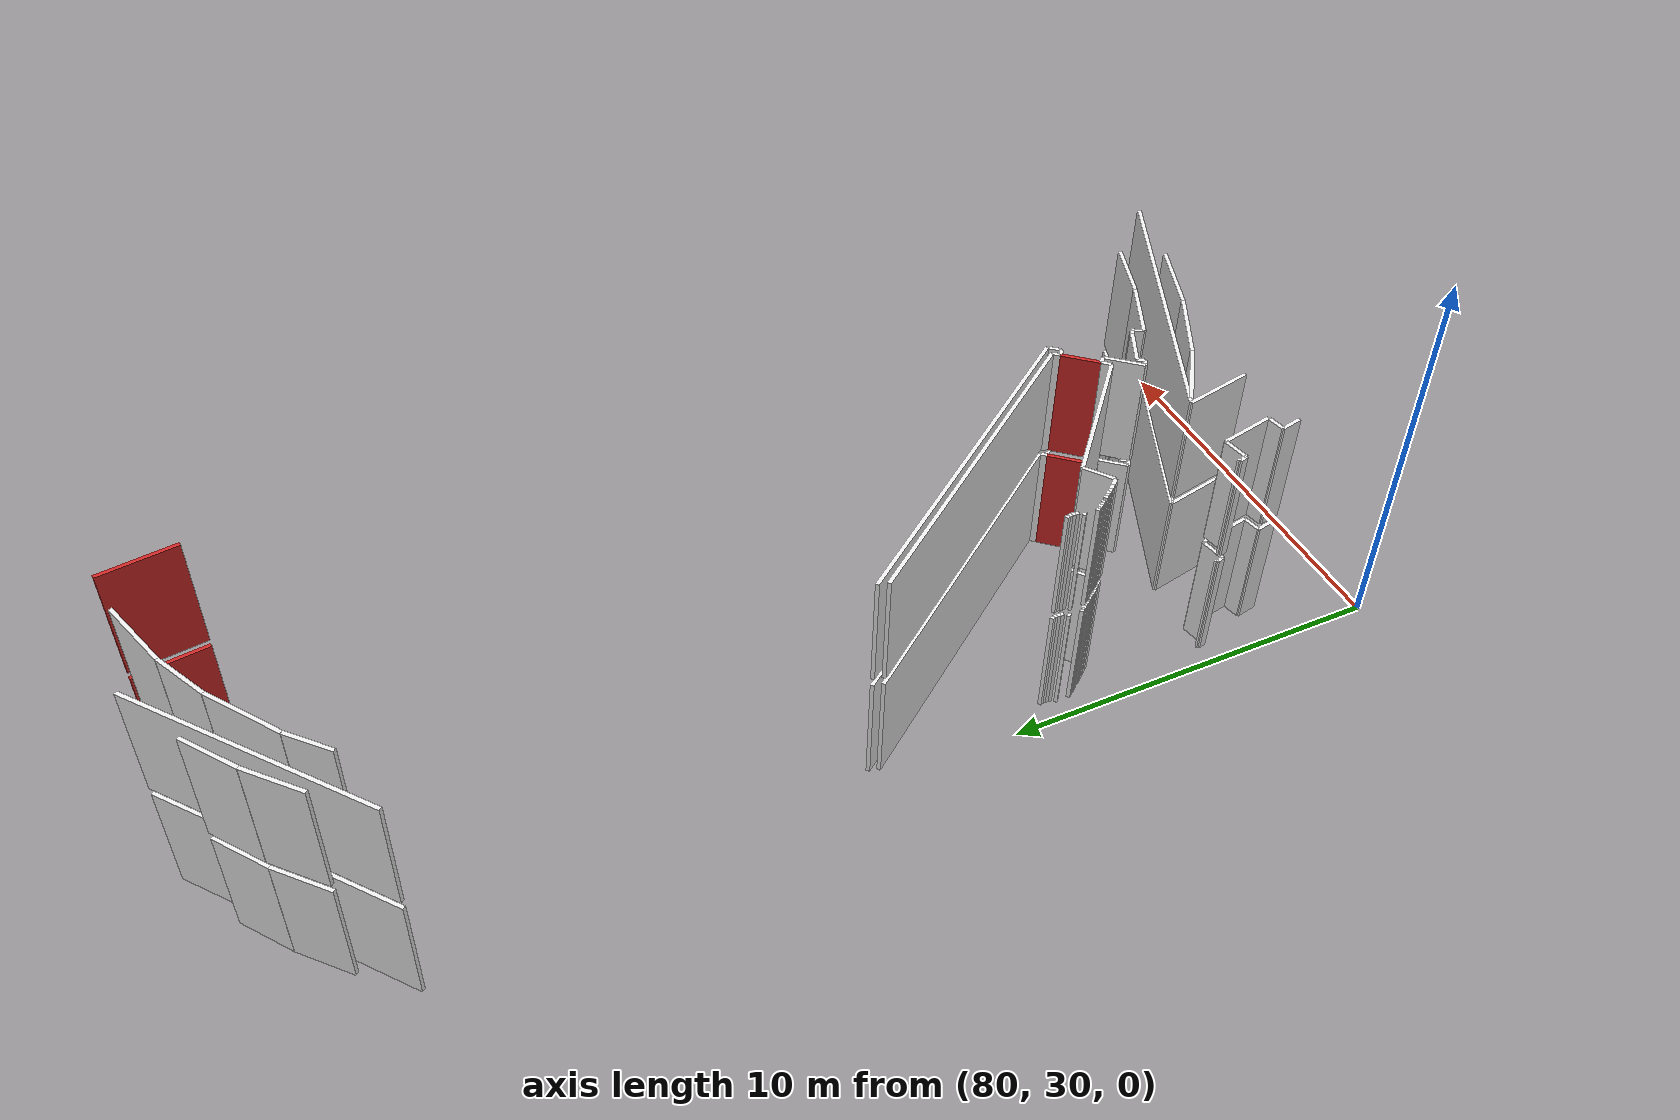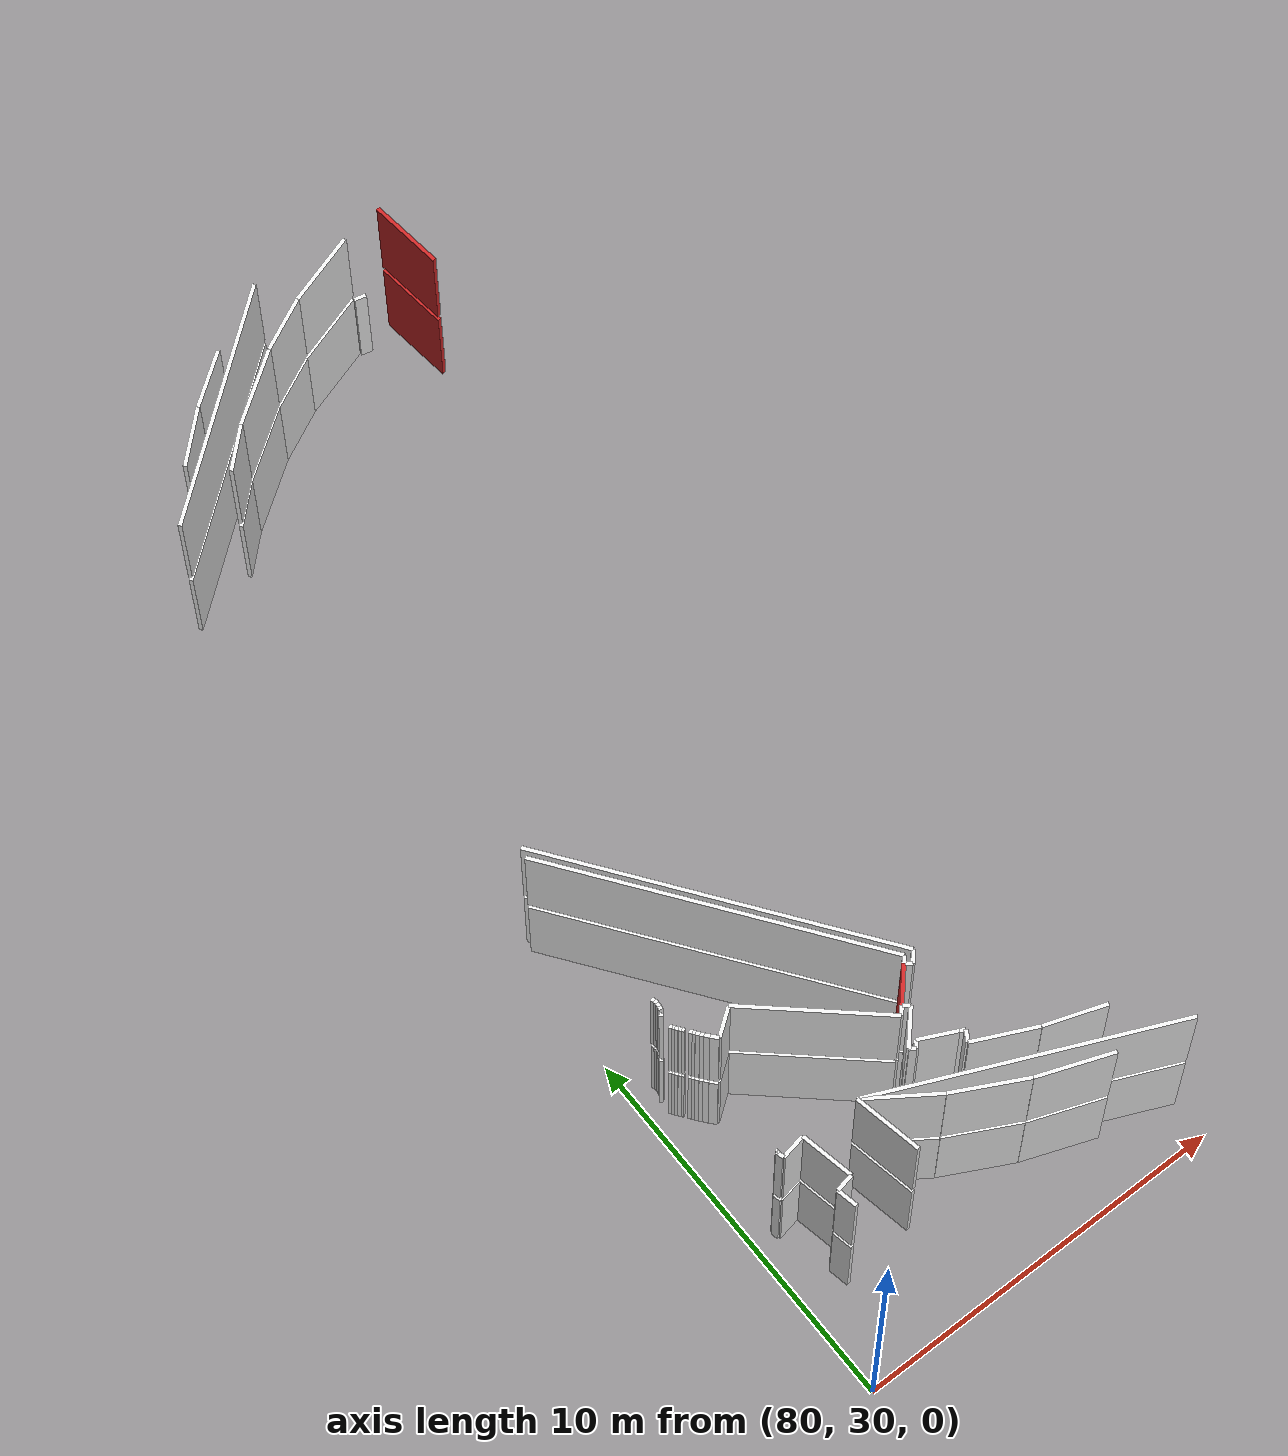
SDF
<sdf version="1.6">
 <world name="default">
  <model name="wall_85.3_35.8_0.0">
   <static>true</static>
   <pose>85.27999999999884 35.77000000001863 1.5 0 0 0.8424789459730314</pose>
   <link name="link">
    <visual name="visual">
     <geometry><box><size>0.9915644206490059 0.1 3</size></box></geometry>
     <material>
      <script><uri>file://media/materials/scripts/gazebo.material</uri><name>Gazebo/Red</name></script>
     </material>
    </visual>
   </link>
  </model>
  <model name="wall_87.9_57.8_0.0">
   <static>true</static>
   <pose>87.93499999999767 57.77499999990687 1.5 0 0 -1.4509545189031208</pose>
   <link name="link">
    <visual name="visual">
     <geometry><box><size>1.9237983263743257 0.1 3</size></box></geometry>
     <material>
      <script><uri>file://media/materials/scripts/gazebo.material</uri><name>Gazebo/Red</name></script>
     </material>
    </visual>
   </link>
  </model>
  <model name="wall_83.1_39.9_0.0">
   <static>true</static>
   <pose>83.10500000001048 39.88000000012107 1.5 0 0 -0.9358171018698879</pose>
   <link name="link">
    <visual name="visual">
     <geometry><box><size>8.918323833668834 0.1 3</size></box></geometry>
     <material>
      <script><uri>file://media/materials/scripts/gazebo.material</uri><name>Gazebo/White</name></script>
     </material>
    </visual>
   </link>
  </model>
  <model name="wall_85.7_36.2_0.0">
   <static>true</static>
   <pose>85.67999999999302 36.21500000008382 1.5 0 0 -2.3217253895523142</pose>
   <link name="link">
    <visual name="visual">
     <geometry><box><size>0.20518284522827895 0.1 3</size></box></geometry>
     <material>
      <script><uri>file://media/materials/scripts/gazebo.material</uri><name>Gazebo/White</name></script>
     </material>
    </visual>
   </link>
  </model>
  <model name="wall_84.9_35.3_0.0">
   <static>true</static>
   <pose>84.86500000001979 35.31000000005588 1.5 0 0 -2.3276308331322193</pose>
   <link name="link">
    <visual name="visual">
     <geometry><box><size>0.24758836783494145 0.1 3</size></box></geometry>
     <material>
      <script><uri>file://media/materials/scripts/gazebo.material</uri><name>Gazebo/White</name></script>
     </material>
    </visual>
   </link>
  </model>
  <model name="wall_83.3_36.5_0.0">
   <static>true</static>
   <pose>83.3300000000163 36.515000000130385 1.5 0 0 2.4126008939400343</pose>
   <link name="link">
    <visual name="visual">
     <geometry><box><size>3.8882000976497033 0.1 3</size></box></geometry>
     <material>
      <script><uri>file://media/materials/scripts/gazebo.material</uri><name>Gazebo/White</name></script>
     </material>
    </visual>
   </link>
  </model>
  <model name="wall_81.6_37.6_0.0">
   <static>true</static>
   <pose>81.55999999999767 37.574999999953434 1.5 0 0 -2.508166770423084</pose>
   <link name="link">
    <visual name="visual">
     <geometry><box><size>0.7940403013767493 0.1 3</size></box></geometry>
     <material>
      <script><uri>file://media/materials/scripts/gazebo.material</uri><name>Gazebo/White</name></script>
     </material>
    </visual>
   </link>
  </model>
  <model name="wall_81.2_37.4_0.0">
   <static>true</static>
   <pose>81.1699999999837 37.419999999925494 1.5 0 0 2.2896263260044316</pose>
   <link name="link">
    <visual name="visual">
     <geometry><box><size>0.21260291637603487 0.1 3</size></box></geometry>
     <material>
      <script><uri>file://media/materials/scripts/gazebo.material</uri><name>Gazebo/White</name></script>
     </material>
    </visual>
   </link>
  </model>
  <model name="wall_81.1_37.6_0.0">
   <static>true</static>
   <pose>81.05499999999302 37.55499999993481 1.5 0 0 2.2565258381046025</pose>
   <link name="link">
    <visual name="visual">
     <geometry><box><size>0.1421267039139652 0.1 3</size></box></geometry>
     <material>
      <script><uri>file://media/materials/scripts/gazebo.material</uri><name>Gazebo/White</name></script>
     </material>
    </visual>
   </link>
  </model>
  <model name="wall_81.0_37.6_0.0">
   <static>true</static>
   <pose>80.98000000001048 37.64500000001863 1.5 0 0 2.2794225967996993</pose>
   <link name="link">
    <visual name="visual">
     <geometry><box><size>0.09219544479768974 0.1 3</size></box></geometry>
     <material>
      <script><uri>file://media/materials/scripts/gazebo.material</uri><name>Gazebo/White</name></script>
     </material>
    </visual>
   </link>
  </model>
  <model name="wall_80.9_37.7_0.0">
   <static>true</static>
   <pose>80.9200000000128 37.71999999997206 1.5 0 0 2.2142974379164873</pose>
   <link name="link">
    <visual name="visual">
     <geometry><box><size>0.09999999968567863 0.1 3</size></box></geometry>
     <material>
      <script><uri>file://media/materials/scripts/gazebo.material</uri><name>Gazebo/White</name></script>
     </material>
    </visual>
   </link>
  </model>
  <model name="wall_80.9_37.8_0.0">
   <static>true</static>
   <pose>80.86999999999534 37.78999999980442 1.5 0 0 2.158798930342464</pose>
   <link name="link">
    <visual name="visual">
     <geometry><box><size>0.0721110255764384 0.1 3</size></box></geometry>
     <material>
      <script><uri>file://media/materials/scripts/gazebo.material</uri><name>Gazebo/White</name></script>
     </material>
    </visual>
   </link>
  </model>
  <model name="wall_80.8_37.9_0.0">
   <static>true</static>
   <pose>80.82499999998254 37.85499999998137 1.5 0 0 2.1910458106539252</pose>
   <link name="link">
    <visual name="visual">
     <geometry><box><size>0.08602325290617123 0.1 3</size></box></geometry>
     <material>
      <script><uri>file://media/materials/scripts/gazebo.material</uri><name>Gazebo/White</name></script>
     </material>
    </visual>
   </link>
  </model>
  <model name="wall_80.7_38.0_0.0">
   <static>true</static>
   <pose>80.72000000000116 37.98999999999069 1.5 0 0 2.158798929670837</pose>
   <link name="link">
    <visual name="visual">
     <geometry><box><size>0.07211102554415061 0.1 3</size></box></geometry>
     <material>
      <script><uri>file://media/materials/scripts/gazebo.material</uri><name>Gazebo/White</name></script>
     </material>
    </visual>
   </link>
  </model>
  <model name="wall_80.7_38.1_0.0">
   <static>true</static>
   <pose>80.67500000001746 38.050000000046566 1.5 0 0 2.2655346024190655</pose>
   <link name="link">
    <visual name="visual">
     <geometry><box><size>0.07810249679454152 0.1 3</size></box></geometry>
     <material>
      <script><uri>file://media/materials/scripts/gazebo.material</uri><name>Gazebo/White</name></script>
     </material>
    </visual>
   </link>
  </model>
  <model name="wall_80.6_38.1_0.0">
   <static>true</static>
   <pose>80.625 38.11499999999069 1.5 0 0 2.191045814350898</pose>
   <link name="link">
    <visual name="visual">
     <geometry><box><size>0.08602325256107957 0.1 3</size></box></geometry>
     <material>
      <script><uri>file://media/materials/scripts/gazebo.material</uri><name>Gazebo/White</name></script>
     </material>
    </visual>
   </link>
  </model>
  <model name="wall_80.6_38.2_0.0">
   <static>true</static>
   <pose>80.58499999999185 38.175000000046566 1.5 0 0 2.1112158241550976</pose>
   <link name="link">
    <visual name="visual">
     <geometry><box><size>0.058309519172461015 0.1 3</size></box></geometry>
     <material>
      <script><uri>file://media/materials/scripts/gazebo.material</uri><name>Gazebo/White</name></script>
     </material>
    </visual>
   </link>
  </model>
  <model name="wall_80.5_38.2_0.0">
   <static>true</static>
   <pose>80.5450000000128 38.22999999998137 1.5 0 0 2.265534606235961</pose>
   <link name="link">
    <visual name="visual">
     <geometry><box><size>0.07810249643681061 0.1 3</size></box></geometry>
     <material>
      <script><uri>file://media/materials/scripts/gazebo.material</uri><name>Gazebo/White</name></script>
     </material>
    </visual>
   </link>
  </model>
  <model name="wall_80.6_38.6_0.0">
   <static>true</static>
   <pose>80.55000000001746 38.579999999841675 1.5 0 0 0.7853981638825122</pose>
   <link name="link">
    <visual name="visual">
     <geometry><box><size>0.084852813780252 0.1 3</size></box></geometry>
     <material>
      <script><uri>file://media/materials/scripts/gazebo.material</uri><name>Gazebo/White</name></script>
     </material>
    </visual>
   </link>
  </model>
  <model name="wall_80.6_38.7_0.0">
   <static>true</static>
   <pose>80.63000000000466 38.71999999997206 1.5 0 0 1.3258176622984403</pose>
   <link name="link">
    <visual name="visual">
     <geometry><box><size>0.08246211213739423 0.1 3</size></box></geometry>
     <material>
      <script><uri>file://media/materials/scripts/gazebo.material</uri><name>Gazebo/White</name></script>
     </material>
    </visual>
   </link>
  </model>
  <model name="wall_80.6_38.8_0.0">
   <static>true</static>
   <pose>80.64500000001863 38.80499999993481 1.5 0 0 1.4601391059049407</pose>
   <link name="link">
    <visual name="visual">
     <geometry><box><size>0.0905538516971156 0.1 3</size></box></geometry>
     <material>
      <script><uri>file://media/materials/scripts/gazebo.material</uri><name>Gazebo/White</name></script>
     </material>
    </visual>
   </link>
  </model>
  <model name="wall_80.6_38.9_0.0">
   <static>true</static>
   <pose>80.64500000001863 38.890000000130385 1.5 0 0 1.695151321341658</pose>
   <link name="link">
    <visual name="visual">
     <geometry><box><size>0.08062257755807112 0.1 3</size></box></geometry>
     <material>
      <script><uri>file://media/materials/scripts/gazebo.material</uri><name>Gazebo/White</name></script>
     </material>
    </visual>
   </link>
  </model>
  <model name="wall_80.6_39.0_0.0">
   <static>true</static>
   <pose>80.625 38.96999999997206 1.5 0 0 1.9295669989791453</pose>
   <link name="link">
    <visual name="visual">
     <geometry><box><size>0.0854400370967353 0.1 3</size></box></geometry>
     <material>
      <script><uri>file://media/materials/scripts/gazebo.material</uri><name>Gazebo/White</name></script>
     </material>
    </visual>
   </link>
  </model>
  <model name="wall_81.4_55.8_0.0">
   <static>true</static>
   <pose>81.41499999997905 55.79000000003725 1.5 0 0 0.7444853337953005</pose>
   <link name="link">
    <visual name="visual">
     <geometry><box><size>1.2101652781804741 0.1 3</size></box></geometry>
     <material>
      <script><uri>file://media/materials/scripts/gazebo.material</uri><name>Gazebo/White</name></script>
     </material>
    </visual>
   </link>
  </model>
  <model name="wall_82.7_56.8_0.0">
   <static>true</static>
   <pose>82.7049999999872 56.78000000002794 1.5 0 0 0.6015335773054936</pose>
   <link name="link">
    <visual name="visual">
     <geometry><box><size>2.0498048685846277 0.1 3</size></box></geometry>
     <material>
      <script><uri>file://media/materials/scripts/gazebo.material</uri><name>Gazebo/White</name></script>
     </material>
    </visual>
   </link>
  </model>
  <model name="wall_84.2_57.7_0.0">
   <static>true</static>
   <pose>84.20999999999185 57.67999999993481 1.5 0 0 0.45145309163045305</pose>
   <link name="link">
    <visual name="visual">
     <geometry><box><size>1.4669696657345486 0.1 3</size></box></geometry>
     <material>
      <script><uri>file://media/materials/scripts/gazebo.material</uri><name>Gazebo/White</name></script>
     </material>
    </visual>
   </link>
  </model>
  <model name="wall_85.8_58.3_0.0">
   <static>true</static>
   <pose>85.79000000000815 58.29000000003725 1.5 0 0 0.30535858012147843</pose>
   <link name="link">
    <visual name="visual">
     <geometry><box><size>1.9292485584238948 0.1 3</size></box></geometry>
     <material>
      <script><uri>file://media/materials/scripts/gazebo.material</uri><name>Gazebo/White</name></script>
     </material>
    </visual>
   </link>
  </model>
  <model name="wall_86.9_58.5_0.0">
   <static>true</static>
   <pose>86.88999999998487 58.49499999987893 1.5 0 0 -0.22923193275564116</pose>
   <link name="link">
    <visual name="visual">
     <geometry><box><size>0.30805843596555793 0.1 3</size></box></geometry>
     <material>
      <script><uri>file://media/materials/scripts/gazebo.material</uri><name>Gazebo/White</name></script>
     </material>
    </visual>
   </link>
  </model>
  <model name="wall_87.9_32.8_0.0">
   <static>true</static>
   <pose>87.86499999999069 32.80499999993481 1.5 0 0 2.8081238857159727</pose>
   <link name="link">
    <visual name="visual">
     <geometry><box><size>1.6191973319729474 0.1 3</size></box></geometry>
     <material>
      <script><uri>file://media/materials/scripts/gazebo.material</uri><name>Gazebo/White</name></script>
     </material>
    </visual>
   </link>
  </model>
  <model name="wall_86.3_33.4_0.0">
   <static>true</static>
   <pose>86.3299999999872 33.43499999982305 1.5 0 0 2.6989393348950688</pose>
   <link name="link">
    <visual name="visual">
     <geometry><box><size>1.704259369904788 0.1 3</size></box></geometry>
     <material>
      <script><uri>file://media/materials/scripts/gazebo.material</uri><name>Gazebo/White</name></script>
     </material>
    </visual>
   </link>
  </model>
  <model name="wall_85.6_33.9_0.0">
   <static>true</static>
   <pose>85.63500000000931 33.92999999993481 1.5 0 0 1.0475180049988588</pose>
   <link name="link">
    <visual name="visual">
     <geometry><box><size>0.3001666206174493 0.1 3</size></box></geometry>
     <material>
      <script><uri>file://media/materials/scripts/gazebo.material</uri><name>Gazebo/White</name></script>
     </material>
    </visual>
   </link>
  </model>
  <model name="wall_85.6_34.1_0.0">
   <static>true</static>
   <pose>85.64500000001863 34.09499999997206 1.5 0 0 2.647651285684841</pose>
   <link name="link">
    <visual name="visual">
     <geometry><box><size>0.14764823052695686 0.1 3</size></box></geometry>
     <material>
      <script><uri>file://media/materials/scripts/gazebo.material</uri><name>Gazebo/White</name></script>
     </material>
    </visual>
   </link>
  </model>
  <model name="wall_85.1_34.3_0.0">
   <static>true</static>
   <pose>85.125 34.3499999998603 1.5 0 0 2.6912186013369697</pose>
   <link name="link">
    <visual name="visual">
     <geometry><box><size>1.0107917688674317 0.1 3</size></box></geometry>
     <material>
      <script><uri>file://media/materials/scripts/gazebo.material</uri><name>Gazebo/White</name></script>
     </material>
    </visual>
   </link>
  </model>
  <model name="wall_84.6_34.5_0.0">
   <static>true</static>
   <pose>84.61499999999069 34.484999999869615 1.5 0 0 -2.145101157111568</pose>
   <link name="link">
    <visual name="visual">
     <geometry><box><size>0.20248456724302388 0.1 3</size></box></geometry>
     <material>
      <script><uri>file://media/materials/scripts/gazebo.material</uri><name>Gazebo/White</name></script>
     </material>
    </visual>
   </link>
  </model>
  <model name="wall_84.5_34.4_0.0">
   <static>true</static>
   <pose>84.48499999998603 34.449999999953434 1.5 0 0 2.5535900496840247</pose>
   <link name="link">
    <visual name="visual">
     <geometry><box><size>0.18027756384423263 0.1 3</size></box></geometry>
     <material>
      <script><uri>file://media/materials/scripts/gazebo.material</uri><name>Gazebo/White</name></script>
     </material>
    </visual>
   </link>
  </model>
  <model name="wall_84.8_34.9_0.0">
   <static>true</static>
   <pose>84.75499999997555 34.88500000000931 1.5 0 0 0.8401379434576747</pose>
   <link name="link">
    <visual name="visual">
     <geometry><box><size>1.0339245620604522 0.1 3</size></box></geometry>
     <material>
      <script><uri>file://media/materials/scripts/gazebo.material</uri><name>Gazebo/White</name></script>
     </material>
    </visual>
   </link>
  </model>
  <model name="wall_85.0_35.3_0.0">
   <static>true</static>
   <pose>85.02499999999418 35.33499999996275 1.5 0 0 2.427501955287879</pose>
   <link name="link">
    <visual name="visual">
     <geometry><box><size>0.19849433231320573 0.1 3</size></box></geometry>
     <material>
      <script><uri>file://media/materials/scripts/gazebo.material</uri><name>Gazebo/White</name></script>
     </material>
    </visual>
   </link>
  </model>
  <model name="wall_85.7_36.1_0.0">
   <static>true</static>
   <pose>85.69000000000233 36.080000000074506 1.5 0 0 -0.6435011091425303</pose>
   <link name="link">
    <visual name="visual">
     <geometry><box><size>0.20000000009313226 0.1 3</size></box></geometry>
     <material>
      <script><uri>file://media/materials/scripts/gazebo.material</uri><name>Gazebo/White</name></script>
     </material>
    </visual>
   </link>
  </model>
  <model name="wall_85.9_36.1_0.0">
   <static>true</static>
   <pose>85.88500000000931 36.14999999990687 1.5 0 0 0.8465463256603086</pose>
   <link name="link">
    <visual name="visual">
     <geometry><box><size>0.34713109897444044 0.1 3</size></box></geometry>
     <material>
      <script><uri>file://media/materials/scripts/gazebo.material</uri><name>Gazebo/White</name></script>
     </material>
    </visual>
   </link>
  </model>
  <model name="wall_83.3_40.0_0.0">
   <static>true</static>
   <pose>83.26500000001397 40.0 1.5 0 0 2.2047677262171748</pose>
   <link name="link">
    <visual name="visual">
     <geometry><box><size>9.234419310697987 0.1 3</size></box></geometry>
     <material>
      <script><uri>file://media/materials/scripts/gazebo.material</uri><name>Gazebo/White</name></script>
     </material>
    </visual>
   </link>
  </model>
  <model name="wall_80.6_34.4_0.0">
   <static>true</static>
   <pose>80.60000000000582 34.44500000006519 1.5 0 0 -2.9764439722422162</pose>
   <link name="link">
    <visual name="visual">
     <geometry><box><size>0.060827625340493775 0.1 3</size></box></geometry>
     <material>
      <script><uri>file://media/materials/scripts/gazebo.material</uri><name>Gazebo/White</name></script>
     </material>
    </visual>
   </link>
  </model>
  <model name="wall_80.6_34.3_0.0">
   <static>true</static>
   <pose>80.59500000000116 34.34499999997206 1.5 0 0 -1.3134726118087283</pose>
   <link name="link">
    <visual name="visual">
     <geometry><box><size>0.1964688269868828 0.1 3</size></box></geometry>
     <material>
      <script><uri>file://media/materials/scripts/gazebo.material</uri><name>Gazebo/White</name></script>
     </material>
    </visual>
   </link>
  </model>
  <model name="wall_80.9_34.3_0.0">
   <static>true</static>
   <pose>80.94000000000233 34.31000000005588 1.5 0 0 0.18534795016043343</pose>
   <link name="link">
    <visual name="visual">
     <geometry><box><size>0.6511528238783146 0.1 3</size></box></geometry>
     <material>
      <script><uri>file://media/materials/scripts/gazebo.material</uri><name>Gazebo/White</name></script>
     </material>
    </visual>
   </link>
  </model>
  <model name="wall_81.4_33.7_0.0">
   <static>true</static>
   <pose>81.39999999999418 33.68000000016764 1.5 0 0 -1.3706152588342921</pose>
   <link name="link">
    <visual name="visual">
     <geometry><box><size>1.408119313011009 0.1 3</size></box></geometry>
     <material>
      <script><uri>file://media/materials/scripts/gazebo.material</uri><name>Gazebo/White</name></script>
     </material>
    </visual>
   </link>
  </model>
  <model name="wall_81.3_32.9_0.0">
   <static>true</static>
   <pose>81.30999999999767 32.94500000006519 1.5 0 0 -2.9483811690637367</pose>
   <link name="link">
    <visual name="visual">
     <geometry><box><size>0.4687216658345593 0.1 3</size></box></geometry>
     <material>
      <script><uri>file://media/materials/scripts/gazebo.material</uri><name>Gazebo/White</name></script>
     </material>
    </visual>
   </link>
  </model>
  <model name="wall_81.1_32.6_0.0">
   <static>true</static>
   <pose>81.13500000000931 32.63500000000931 1.5 0 0 -1.3661545169134668</pose>
   <link name="link">
    <visual name="visual">
     <geometry><box><size>0.5412947439055198 0.1 3</size></box></geometry>
     <material>
      <script><uri>file://media/materials/scripts/gazebo.material</uri><name>Gazebo/White</name></script>
     </material>
    </visual>
   </link>
  </model>
  <model name="wall_82.0_57.6_0.0">
   <static>true</static>
   <pose>81.96500000002561 57.63500000000931 1.5 0 0 -2.52285831789347</pose>
   <link name="link">
    <visual name="visual">
     <geometry><box><size>1.5344705928208873 0.1 3</size></box></geometry>
     <material>
      <script><uri>file://media/materials/scripts/gazebo.material</uri><name>Gazebo/White</name></script>
     </material>
    </visual>
   </link>
  </model>
  <model name="wall_80.8_56.7_0.0">
   <static>true</static>
   <pose>80.76500000001397 56.669999999925494 1.5 0 0 -2.4063806244587402</pose>
   <link name="link">
    <visual name="visual">
     <geometry><box><size>1.5505160431711233 0.1 3</size></box></geometry>
     <material>
      <script><uri>file://media/materials/scripts/gazebo.material</uri><name>Gazebo/White</name></script>
     </material>
    </visual>
   </link>
  </model>
  <model name="wall_82.9_33.4_0.0">
   <static>true</static>
   <pose>82.93499999999767 33.419999999925494 1.5 0 0 1.767098990916609</pose>
   <link name="link">
    <visual name="visual">
     <geometry><box><size>1.7944637079631676 0.1 3</size></box></geometry>
     <material>
      <script><uri>file://media/materials/scripts/gazebo.material</uri><name>Gazebo/White</name></script>
     </material>
    </visual>
   </link>
  </model>
  <model name="wall_83.6_33.7_0.0">
   <static>true</static>
   <pose>83.58499999999185 33.734999999869615 1.5 0 0 -0.6004846182035232</pose>
   <link name="link">
    <visual name="visual">
     <geometry><box><size>1.9998499942826147 0.1 3</size></box></geometry>
     <material>
      <script><uri>file://media/materials/scripts/gazebo.material</uri><name>Gazebo/White</name></script>
     </material>
    </visual>
   </link>
  </model>
  <model name="wall_85.3_32.7_0.0">
   <static>true</static>
   <pose>85.2949999999837 32.70999999996275 1.5 0 0 -0.47934138766953305</pose>
   <link name="link">
    <visual name="visual">
     <geometry><box><size>1.9948182874459637 0.1 3</size></box></geometry>
     <material>
      <script><uri>file://media/materials/scripts/gazebo.material</uri><name>Gazebo/White</name></script>
     </material>
    </visual>
   </link>
  </model>
  <model name="wall_87.1_31.9_0.0">
   <static>true</static>
   <pose>87.11499999999069 31.899999999906868 1.5 0 0 -0.3581845039546106</pose>
   <link name="link">
    <visual name="visual">
     <geometry><box><size>1.9967223142548778 0.1 3</size></box></geometry>
     <material>
      <script><uri>file://media/materials/scripts/gazebo.material</uri><name>Gazebo/White</name></script>
     </material>
    </visual>
   </link>
  </model>
  <model name="wall_86.4_32.7_0.0">
   <static>true</static>
   <pose>86.38000000000466 32.68999999994412 1.5 0 0 2.723112045214399</pose>
   <link name="link">
    <visual name="visual">
     <geometry><box><size>7.923761732800008 0.1 3</size></box></geometry>
     <material>
      <script><uri>file://media/materials/scripts/gazebo.material</uri><name>Gazebo/White</name></script>
     </material>
    </visual>
   </link>
  </model>
  <model name="wall_81.7_57.0_0.0">
   <static>true</static>
   <pose>81.74499999999534 56.97000000020489 1.5 0 0 0.6592795022457629</pose>
   <link name="link">
    <visual name="visual">
     <geometry><box><size>6.4648047147274434 0.1 3</size></box></geometry>
     <material>
      <script><uri>file://media/materials/scripts/gazebo.material</uri><name>Gazebo/White</name></script>
     </material>
    </visual>
   </link>
  </model>
  <model name="wall_85.3_35.8_3.2">
   <static>true</static>
   <pose>85.27999999999884 35.77000000001863 4.7 0 0 0.8424789459730314</pose>
   <link name="link">
    <visual name="visual">
     <geometry><box><size>0.9915644206490059 0.1 3</size></box></geometry>
     <material>
      <script><uri>file://media/materials/scripts/gazebo.material</uri><name>Gazebo/Red</name></script>
     </material>
    </visual>
   </link>
  </model>
  <model name="wall_87.9_57.8_3.2">
   <static>true</static>
   <pose>87.93499999999767 57.77499999990687 4.7 0 0 -1.4509545189031208</pose>
   <link name="link">
    <visual name="visual">
     <geometry><box><size>1.9237983263743257 0.1 3</size></box></geometry>
     <material>
      <script><uri>file://media/materials/scripts/gazebo.material</uri><name>Gazebo/Red</name></script>
     </material>
    </visual>
   </link>
  </model>
  <model name="wall_83.1_39.9_3.2">
   <static>true</static>
   <pose>83.10500000001048 39.88000000012107 4.7 0 0 -0.9358171018698879</pose>
   <link name="link">
    <visual name="visual">
     <geometry><box><size>8.918323833668834 0.1 3</size></box></geometry>
     <material>
      <script><uri>file://media/materials/scripts/gazebo.material</uri><name>Gazebo/White</name></script>
     </material>
    </visual>
   </link>
  </model>
  <model name="wall_85.7_36.2_3.2">
   <static>true</static>
   <pose>85.67999999999302 36.21500000008382 4.7 0 0 -2.3217253895523142</pose>
   <link name="link">
    <visual name="visual">
     <geometry><box><size>0.20518284522827895 0.1 3</size></box></geometry>
     <material>
      <script><uri>file://media/materials/scripts/gazebo.material</uri><name>Gazebo/White</name></script>
     </material>
    </visual>
   </link>
  </model>
  <model name="wall_84.9_35.3_3.2">
   <static>true</static>
   <pose>84.86500000001979 35.31000000005588 4.7 0 0 -2.3276308331322193</pose>
   <link name="link">
    <visual name="visual">
     <geometry><box><size>0.24758836783494145 0.1 3</size></box></geometry>
     <material>
      <script><uri>file://media/materials/scripts/gazebo.material</uri><name>Gazebo/White</name></script>
     </material>
    </visual>
   </link>
  </model>
  <model name="wall_83.3_36.5_3.2">
   <static>true</static>
   <pose>83.3300000000163 36.515000000130385 4.7 0 0 2.4126008939400343</pose>
   <link name="link">
    <visual name="visual">
     <geometry><box><size>3.8882000976497033 0.1 3</size></box></geometry>
     <material>
      <script><uri>file://media/materials/scripts/gazebo.material</uri><name>Gazebo/White</name></script>
     </material>
    </visual>
   </link>
  </model>
  <model name="wall_81.6_37.6_3.2">
   <static>true</static>
   <pose>81.55999999999767 37.574999999953434 4.7 0 0 -2.508166770423084</pose>
   <link name="link">
    <visual name="visual">
     <geometry><box><size>0.7940403013767493 0.1 3</size></box></geometry>
     <material>
      <script><uri>file://media/materials/scripts/gazebo.material</uri><name>Gazebo/White</name></script>
     </material>
    </visual>
   </link>
  </model>
  <model name="wall_81.2_37.4_3.2">
   <static>true</static>
   <pose>81.1699999999837 37.419999999925494 4.7 0 0 2.2896263260044316</pose>
   <link name="link">
    <visual name="visual">
     <geometry><box><size>0.21260291637603487 0.1 3</size></box></geometry>
     <material>
      <script><uri>file://media/materials/scripts/gazebo.material</uri><name>Gazebo/White</name></script>
     </material>
    </visual>
   </link>
  </model>
  <model name="wall_81.1_37.6_3.2">
   <static>true</static>
   <pose>81.05499999999302 37.55499999993481 4.7 0 0 2.2565258381046025</pose>
   <link name="link">
    <visual name="visual">
     <geometry><box><size>0.1421267039139652 0.1 3</size></box></geometry>
     <material>
      <script><uri>file://media/materials/scripts/gazebo.material</uri><name>Gazebo/White</name></script>
     </material>
    </visual>
   </link>
  </model>
  <model name="wall_81.0_37.6_3.2">
   <static>true</static>
   <pose>80.98000000001048 37.64500000001863 4.7 0 0 2.2794225967996993</pose>
   <link name="link">
    <visual name="visual">
     <geometry><box><size>0.09219544479768974 0.1 3</size></box></geometry>
     <material>
      <script><uri>file://media/materials/scripts/gazebo.material</uri><name>Gazebo/White</name></script>
     </material>
    </visual>
   </link>
  </model>
  <model name="wall_80.9_37.7_3.2">
   <static>true</static>
   <pose>80.9200000000128 37.71999999997206 4.7 0 0 2.2142974379164873</pose>
   <link name="link">
    <visual name="visual">
     <geometry><box><size>0.09999999968567863 0.1 3</size></box></geometry>
     <material>
      <script><uri>file://media/materials/scripts/gazebo.material</uri><name>Gazebo/White</name></script>
     </material>
    </visual>
   </link>
  </model>
  <model name="wall_80.9_37.8_3.2">
   <static>true</static>
   <pose>80.86999999999534 37.78999999980442 4.7 0 0 2.158798930342464</pose>
   <link name="link">
    <visual name="visual">
     <geometry><box><size>0.0721110255764384 0.1 3</size></box></geometry>
     <material>
      <script><uri>file://media/materials/scripts/gazebo.material</uri><name>Gazebo/White</name></script>
     </material>
    </visual>
   </link>
  </model>
  <model name="wall_80.8_37.9_3.2">
   <static>true</static>
   <pose>80.82499999998254 37.85499999998137 4.7 0 0 2.1910458106539252</pose>
   <link name="link">
    <visual name="visual">
     <geometry><box><size>0.08602325290617123 0.1 3</size></box></geometry>
     <material>
      <script><uri>file://media/materials/scripts/gazebo.material</uri><name>Gazebo/White</name></script>
     </material>
    </visual>
   </link>
  </model>
  <model name="wall_80.7_38.0_3.2">
   <static>true</static>
   <pose>80.72000000000116 37.98999999999069 4.7 0 0 2.158798929670837</pose>
   <link name="link">
    <visual name="visual">
     <geometry><box><size>0.07211102554415061 0.1 3</size></box></geometry>
     <material>
      <script><uri>file://media/materials/scripts/gazebo.material</uri><name>Gazebo/White</name></script>
     </material>
    </visual>
   </link>
  </model>
  <model name="wall_80.7_38.1_3.2">
   <static>true</static>
   <pose>80.67500000001746 38.050000000046566 4.7 0 0 2.2655346024190655</pose>
   <link name="link">
    <visual name="visual">
     <geometry><box><size>0.07810249679454152 0.1 3</size></box></geometry>
     <material>
      <script><uri>file://media/materials/scripts/gazebo.material</uri><name>Gazebo/White</name></script>
     </material>
    </visual>
   </link>
  </model>
  <model name="wall_80.6_38.1_3.2">
   <static>true</static>
   <pose>80.625 38.11499999999069 4.7 0 0 2.191045814350898</pose>
   <link name="link">
    <visual name="visual">
     <geometry><box><size>0.08602325256107957 0.1 3</size></box></geometry>
     <material>
      <script><uri>file://media/materials/scripts/gazebo.material</uri><name>Gazebo/White</name></script>
     </material>
    </visual>
   </link>
  </model>
  <model name="wall_80.6_38.2_3.2">
   <static>true</static>
   <pose>80.58499999999185 38.175000000046566 4.7 0 0 2.1112158241550976</pose>
   <link name="link">
    <visual name="visual">
     <geometry><box><size>0.058309519172461015 0.1 3</size></box></geometry>
     <material>
      <script><uri>file://media/materials/scripts/gazebo.material</uri><name>Gazebo/White</name></script>
     </material>
    </visual>
   </link>
  </model>
  <model name="wall_80.5_38.2_3.2">
   <static>true</static>
   <pose>80.5450000000128 38.22999999998137 4.7 0 0 2.265534606235961</pose>
   <link name="link">
    <visual name="visual">
     <geometry><box><size>0.07810249643681061 0.1 3</size></box></geometry>
     <material>
      <script><uri>file://media/materials/scripts/gazebo.material</uri><name>Gazebo/White</name></script>
     </material>
    </visual>
   </link>
  </model>
  <model name="wall_80.6_38.6_3.2">
   <static>true</static>
   <pose>80.55000000001746 38.579999999841675 4.7 0 0 0.7853981638825122</pose>
   <link name="link">
    <visual name="visual">
     <geometry><box><size>0.084852813780252 0.1 3</size></box></geometry>
     <material>
      <script><uri>file://media/materials/scripts/gazebo.material</uri><name>Gazebo/White</name></script>
     </material>
    </visual>
   </link>
  </model>
  <model name="wall_80.6_38.7_3.2">
   <static>true</static>
   <pose>80.63000000000466 38.71999999997206 4.7 0 0 1.3258176622984403</pose>
   <link name="link">
    <visual name="visual">
     <geometry><box><size>0.08246211213739423 0.1 3</size></box></geometry>
     <material>
      <script><uri>file://media/materials/scripts/gazebo.material</uri><name>Gazebo/White</name></script>
     </material>
    </visual>
   </link>
  </model>
  <model name="wall_80.6_38.8_3.2">
   <static>true</static>
   <pose>80.64500000001863 38.80499999993481 4.7 0 0 1.4601391059049407</pose>
   <link name="link">
    <visual name="visual">
     <geometry><box><size>0.0905538516971156 0.1 3</size></box></geometry>
     <material>
      <script><uri>file://media/materials/scripts/gazebo.material</uri><name>Gazebo/White</name></script>
     </material>
    </visual>
   </link>
  </model>
  <model name="wall_80.6_38.9_3.2">
   <static>true</static>
   <pose>80.64500000001863 38.890000000130385 4.7 0 0 1.695151321341658</pose>
   <link name="link">
    <visual name="visual">
     <geometry><box><size>0.08062257755807112 0.1 3</size></box></geometry>
     <material>
      <script><uri>file://media/materials/scripts/gazebo.material</uri><name>Gazebo/White</name></script>
     </material>
    </visual>
   </link>
  </model>
  <model name="wall_80.6_39.0_3.2">
   <static>true</static>
   <pose>80.625 38.96999999997206 4.7 0 0 1.9295669989791453</pose>
   <link name="link">
    <visual name="visual">
     <geometry><box><size>0.0854400370967353 0.1 3</size></box></geometry>
     <material>
      <script><uri>file://media/materials/scripts/gazebo.material</uri><name>Gazebo/White</name></script>
     </material>
    </visual>
   </link>
  </model>
  <model name="wall_81.4_55.8_3.2">
   <static>true</static>
   <pose>81.41499999997905 55.79000000003725 4.7 0 0 0.7444853337953005</pose>
   <link name="link">
    <visual name="visual">
     <geometry><box><size>1.2101652781804741 0.1 3</size></box></geometry>
     <material>
      <script><uri>file://media/materials/scripts/gazebo.material</uri><name>Gazebo/White</name></script>
     </material>
    </visual>
   </link>
  </model>
  <model name="wall_82.7_56.8_3.2">
   <static>true</static>
   <pose>82.7049999999872 56.78000000002794 4.7 0 0 0.6015335773054936</pose>
   <link name="link">
    <visual name="visual">
     <geometry><box><size>2.0498048685846277 0.1 3</size></box></geometry>
     <material>
      <script><uri>file://media/materials/scripts/gazebo.material</uri><name>Gazebo/White</name></script>
     </material>
    </visual>
   </link>
  </model>
  <model name="wall_84.2_57.7_3.2">
   <static>true</static>
   <pose>84.20999999999185 57.67999999993481 4.7 0 0 0.45145309163045305</pose>
   <link name="link">
    <visual name="visual">
     <geometry><box><size>1.4669696657345486 0.1 3</size></box></geometry>
     <material>
      <script><uri>file://media/materials/scripts/gazebo.material</uri><name>Gazebo/White</name></script>
     </material>
    </visual>
   </link>
  </model>
  <model name="wall_85.8_58.3_3.2">
   <static>true</static>
   <pose>85.79000000000815 58.29000000003725 4.7 0 0 0.30535858012147843</pose>
   <link name="link">
    <visual name="visual">
     <geometry><box><size>1.9292485584238948 0.1 3</size></box></geometry>
     <material>
      <script><uri>file://media/materials/scripts/gazebo.material</uri><name>Gazebo/White</name></script>
     </material>
    </visual>
   </link>
  </model>
  <model name="wall_87.9_32.8_3.2">
   <static>true</static>
   <pose>87.86499999999069 32.80499999993481 4.7 0 0 2.8081238857159727</pose>
   <link name="link">
    <visual name="visual">
     <geometry><box><size>1.6191973319729474 0.1 3</size></box></geometry>
     <material>
      <script><uri>file://media/materials/scripts/gazebo.material</uri><name>Gazebo/White</name></script>
     </material>
    </visual>
   </link>
  </model>
  <model name="wall_86.3_33.4_3.2">
   <static>true</static>
   <pose>86.3299999999872 33.43499999982305 4.7 0 0 2.6989393348950688</pose>
   <link name="link">
    <visual name="visual">
     <geometry><box><size>1.704259369904788 0.1 3</size></box></geometry>
     <material>
      <script><uri>file://media/materials/scripts/gazebo.material</uri><name>Gazebo/White</name></script>
     </material>
    </visual>
   </link>
  </model>
  <model name="wall_85.6_33.9_3.2">
   <static>true</static>
   <pose>85.63500000000931 33.92999999993481 4.7 0 0 1.0475180049988588</pose>
   <link name="link">
    <visual name="visual">
     <geometry><box><size>0.3001666206174493 0.1 3</size></box></geometry>
     <material>
      <script><uri>file://media/materials/scripts/gazebo.material</uri><name>Gazebo/White</name></script>
     </material>
    </visual>
   </link>
  </model>
  <model name="wall_85.6_34.1_3.2">
   <static>true</static>
   <pose>85.64500000001863 34.09499999997206 4.7 0 0 2.647651285684841</pose>
   <link name="link">
    <visual name="visual">
     <geometry><box><size>0.14764823052695686 0.1 3</size></box></geometry>
     <material>
      <script><uri>file://media/materials/scripts/gazebo.material</uri><name>Gazebo/White</name></script>
     </material>
    </visual>
   </link>
  </model>
  <model name="wall_85.1_34.3_3.2">
   <static>true</static>
   <pose>85.125 34.3499999998603 4.7 0 0 2.6912186013369697</pose>
   <link name="link">
    <visual name="visual">
     <geometry><box><size>1.0107917688674317 0.1 3</size></box></geometry>
     <material>
      <script><uri>file://media/materials/scripts/gazebo.material</uri><name>Gazebo/White</name></script>
     </material>
    </visual>
   </link>
  </model>
  <model name="wall_84.6_34.5_3.2">
   <static>true</static>
   <pose>84.61499999999069 34.484999999869615 4.7 0 0 -2.145101157111568</pose>
   <link name="link">
    <visual name="visual">
     <geometry><box><size>0.20248456724302388 0.1 3</size></box></geometry>
     <material>
      <script><uri>file://media/materials/scripts/gazebo.material</uri><name>Gazebo/White</name></script>
     </material>
    </visual>
   </link>
  </model>
  <model name="wall_84.5_34.4_3.2">
   <static>true</static>
   <pose>84.48499999998603 34.449999999953434 4.7 0 0 2.5535900496840247</pose>
   <link name="link">
    <visual name="visual">
     <geometry><box><size>0.18027756384423263 0.1 3</size></box></geometry>
     <material>
      <script><uri>file://media/materials/scripts/gazebo.material</uri><name>Gazebo/White</name></script>
     </material>
    </visual>
   </link>
  </model>
  <model name="wall_84.8_34.9_3.2">
   <static>true</static>
   <pose>84.75499999997555 34.88500000000931 4.7 0 0 0.8401379434576747</pose>
   <link name="link">
    <visual name="visual">
     <geometry><box><size>1.0339245620604522 0.1 3</size></box></geometry>
     <material>
      <script><uri>file://media/materials/scripts/gazebo.material</uri><name>Gazebo/White</name></script>
     </material>
    </visual>
   </link>
  </model>
  <model name="wall_85.0_35.3_3.2">
   <static>true</static>
   <pose>85.02499999999418 35.33499999996275 4.7 0 0 2.427501955287879</pose>
   <link name="link">
    <visual name="visual">
     <geometry><box><size>0.19849433231320573 0.1 3</size></box></geometry>
     <material>
      <script><uri>file://media/materials/scripts/gazebo.material</uri><name>Gazebo/White</name></script>
     </material>
    </visual>
   </link>
  </model>
  <model name="wall_85.7_36.1_3.2">
   <static>true</static>
   <pose>85.69000000000233 36.080000000074506 4.7 0 0 -0.6435011091425303</pose>
   <link name="link">
    <visual name="visual">
     <geometry><box><size>0.20000000009313226 0.1 3</size></box></geometry>
     <material>
      <script><uri>file://media/materials/scripts/gazebo.material</uri><name>Gazebo/White</name></script>
     </material>
    </visual>
   </link>
  </model>
  <model name="wall_85.9_36.1_3.2">
   <static>true</static>
   <pose>85.88500000000931 36.14999999990687 4.7 0 0 0.8465463256603086</pose>
   <link name="link">
    <visual name="visual">
     <geometry><box><size>0.34713109897444044 0.1 3</size></box></geometry>
     <material>
      <script><uri>file://media/materials/scripts/gazebo.material</uri><name>Gazebo/White</name></script>
     </material>
    </visual>
   </link>
  </model>
  <model name="wall_83.3_40.0_3.2">
   <static>true</static>
   <pose>83.26500000001397 40.0 4.7 0 0 2.2047677262171748</pose>
   <link name="link">
    <visual name="visual">
     <geometry><box><size>9.234419310697987 0.1 3</size></box></geometry>
     <material>
      <script><uri>file://media/materials/scripts/gazebo.material</uri><name>Gazebo/White</name></script>
     </material>
    </visual>
   </link>
  </model>
  <model name="wall_80.6_34.4_3.2">
   <static>true</static>
   <pose>80.60000000000582 34.44500000006519 4.7 0 0 -2.9764439722422162</pose>
   <link name="link">
    <visual name="visual">
     <geometry><box><size>0.060827625340493775 0.1 3</size></box></geometry>
     <material>
      <script><uri>file://media/materials/scripts/gazebo.material</uri><name>Gazebo/White</name></script>
     </material>
    </visual>
   </link>
  </model>
  <model name="wall_80.6_34.3_3.2">
   <static>true</static>
   <pose>80.59500000000116 34.34499999997206 4.7 0 0 -1.3134726118087283</pose>
   <link name="link">
    <visual name="visual">
     <geometry><box><size>0.1964688269868828 0.1 3</size></box></geometry>
     <material>
      <script><uri>file://media/materials/scripts/gazebo.material</uri><name>Gazebo/White</name></script>
     </material>
    </visual>
   </link>
  </model>
  <model name="wall_80.9_34.3_3.2">
   <static>true</static>
   <pose>80.94000000000233 34.31000000005588 4.7 0 0 0.18534795016043343</pose>
   <link name="link">
    <visual name="visual">
     <geometry><box><size>0.6511528238783146 0.1 3</size></box></geometry>
     <material>
      <script><uri>file://media/materials/scripts/gazebo.material</uri><name>Gazebo/White</name></script>
     </material>
    </visual>
   </link>
  </model>
  <model name="wall_81.4_33.7_3.2">
   <static>true</static>
   <pose>81.39999999999418 33.68000000016764 4.7 0 0 -1.3706152588342921</pose>
   <link name="link">
    <visual name="visual">
     <geometry><box><size>1.408119313011009 0.1 3</size></box></geometry>
     <material>
      <script><uri>file://media/materials/scripts/gazebo.material</uri><name>Gazebo/White</name></script>
     </material>
    </visual>
   </link>
  </model>
  <model name="wall_81.3_32.9_3.2">
   <static>true</static>
   <pose>81.30999999999767 32.94500000006519 4.7 0 0 -2.9483811690637367</pose>
   <link name="link">
    <visual name="visual">
     <geometry><box><size>0.4687216658345593 0.1 3</size></box></geometry>
     <material>
      <script><uri>file://media/materials/scripts/gazebo.material</uri><name>Gazebo/White</name></script>
     </material>
    </visual>
   </link>
  </model>
  <model name="wall_81.1_32.6_3.2">
   <static>true</static>
   <pose>81.13500000000931 32.63500000000931 4.7 0 0 -1.3661545169134668</pose>
   <link name="link">
    <visual name="visual">
     <geometry><box><size>0.5412947439055198 0.1 3</size></box></geometry>
     <material>
      <script><uri>file://media/materials/scripts/gazebo.material</uri><name>Gazebo/White</name></script>
     </material>
    </visual>
   </link>
  </model>
  <model name="wall_82.0_57.6_3.2">
   <static>true</static>
   <pose>81.96500000002561 57.63500000000931 4.7 0 0 -2.52285831789347</pose>
   <link name="link">
    <visual name="visual">
     <geometry><box><size>1.5344705928208873 0.1 3</size></box></geometry>
     <material>
      <script><uri>file://media/materials/scripts/gazebo.material</uri><name>Gazebo/White</name></script>
     </material>
    </visual>
   </link>
  </model>
  <model name="wall_80.8_56.7_3.2">
   <static>true</static>
   <pose>80.76500000001397 56.669999999925494 4.7 0 0 -2.4063806244587402</pose>
   <link name="link">
    <visual name="visual">
     <geometry><box><size>1.5505160431711233 0.1 3</size></box></geometry>
     <material>
      <script><uri>file://media/materials/scripts/gazebo.material</uri><name>Gazebo/White</name></script>
     </material>
    </visual>
   </link>
  </model>
  <model name="wall_82.9_33.4_3.2">
   <static>true</static>
   <pose>82.93499999999767 33.419999999925494 4.7 0 0 1.767098990916609</pose>
   <link name="link">
    <visual name="visual">
     <geometry><box><size>1.7944637079631676 0.1 3</size></box></geometry>
     <material>
      <script><uri>file://media/materials/scripts/gazebo.material</uri><name>Gazebo/White</name></script>
     </material>
    </visual>
   </link>
  </model>
  <model name="wall_83.6_33.7_3.2">
   <static>true</static>
   <pose>83.58499999999185 33.734999999869615 4.7 0 0 -0.6004846182035232</pose>
   <link name="link">
    <visual name="visual">
     <geometry><box><size>1.9998499942826147 0.1 3</size></box></geometry>
     <material>
      <script><uri>file://media/materials/scripts/gazebo.material</uri><name>Gazebo/White</name></script>
     </material>
    </visual>
   </link>
  </model>
  <model name="wall_85.3_32.7_3.2">
   <static>true</static>
   <pose>85.2949999999837 32.70999999996275 4.7 0 0 -0.47934138766953305</pose>
   <link name="link">
    <visual name="visual">
     <geometry><box><size>1.9948182874459637 0.1 3</size></box></geometry>
     <material>
      <script><uri>file://media/materials/scripts/gazebo.material</uri><name>Gazebo/White</name></script>
     </material>
    </visual>
   </link>
  </model>
  <model name="wall_87.1_31.9_3.2">
   <static>true</static>
   <pose>87.11499999999069 31.899999999906868 4.7 0 0 -0.3581845039546106</pose>
   <link name="link">
    <visual name="visual">
     <geometry><box><size>1.9967223142548778 0.1 3</size></box></geometry>
     <material>
      <script><uri>file://media/materials/scripts/gazebo.material</uri><name>Gazebo/White</name></script>
     </material>
    </visual>
   </link>
  </model>
  <model name="wall_86.4_32.7_3.2">
   <static>true</static>
   <pose>86.38000000000466 32.68999999994412 4.7 0 0 2.723112045214399</pose>
   <link name="link">
    <visual name="visual">
     <geometry><box><size>7.923761732800008 0.1 3</size></box></geometry>
     <material>
      <script><uri>file://media/materials/scripts/gazebo.material</uri><name>Gazebo/White</name></script>
     </material>
    </visual>
   </link>
  </model>
  <model name="wall_81.7_57.0_3.2">
   <static>true</static>
   <pose>81.74499999999534 56.97000000020489 4.7 0 0 0.6592795022457629</pose>
   <link name="link">
    <visual name="visual">
     <geometry><box><size>6.4648047147274434 0.1 3</size></box></geometry>
     <material>
      <script><uri>file://media/materials/scripts/gazebo.material</uri><name>Gazebo/White</name></script>
     </material>
    </visual>
   </link>
  </model>
 </world>
</sdf>
